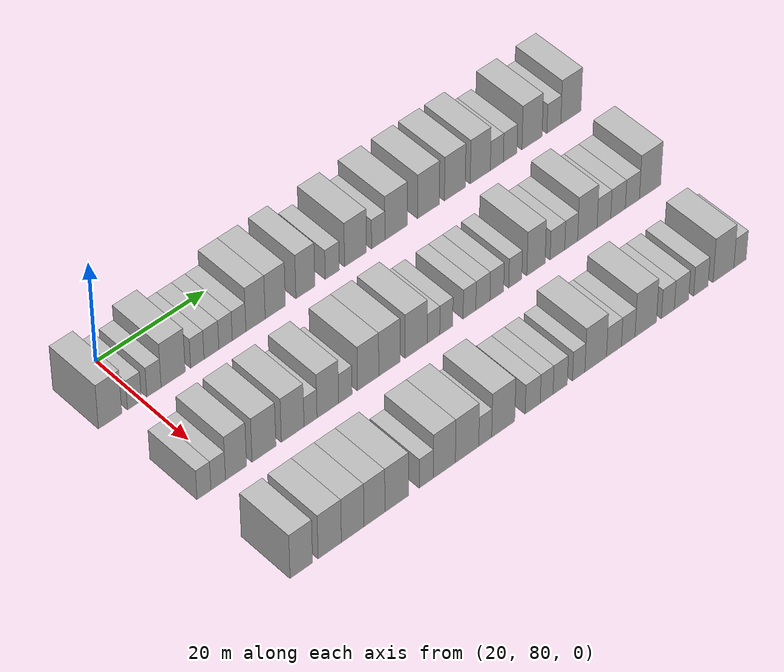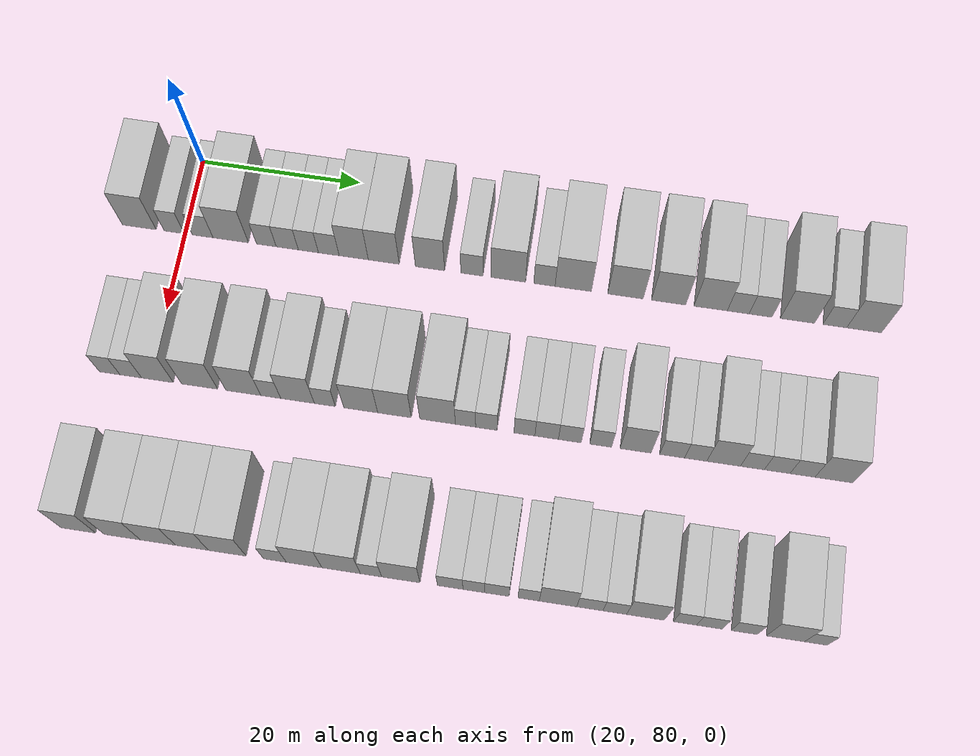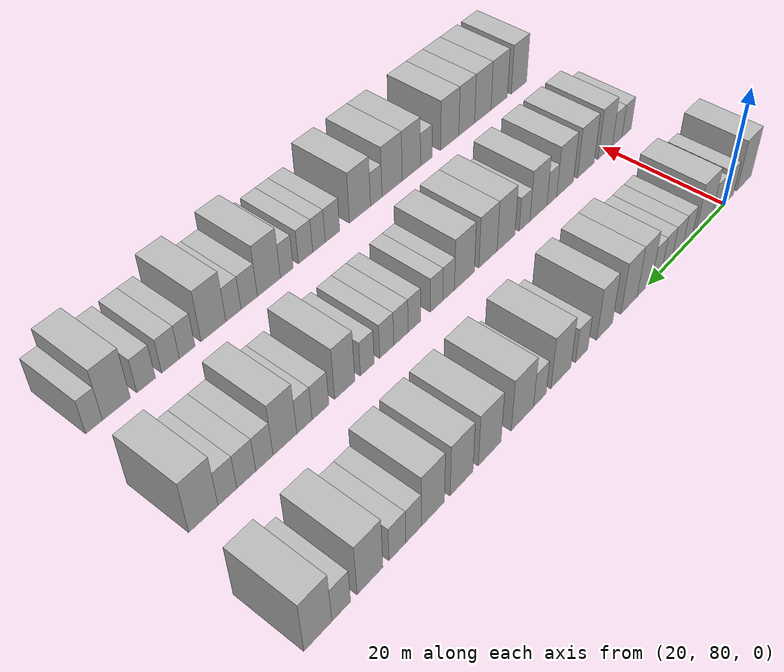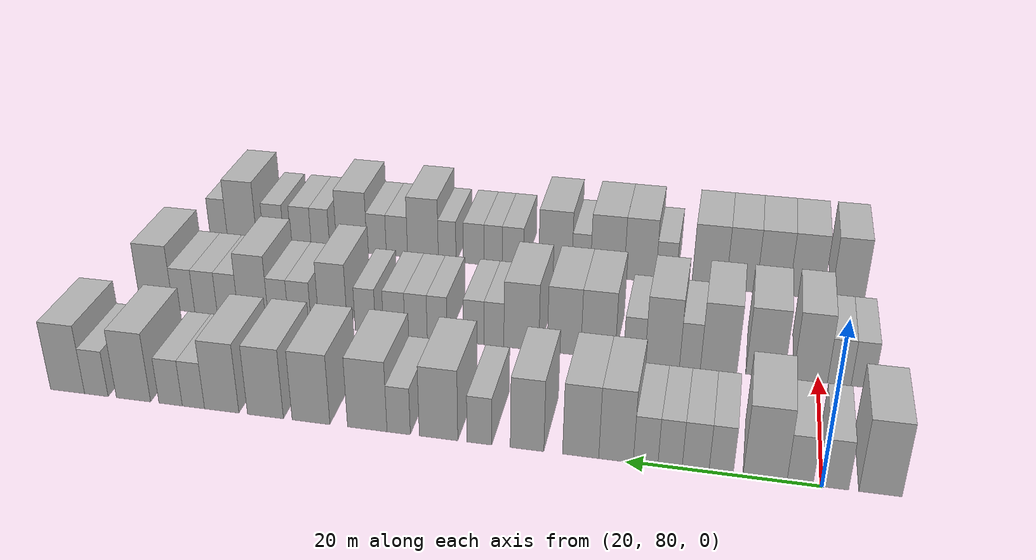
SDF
<sdf version="1.6">
 <world name="default">
  <model name="building_109">
   <static>1</static>
   <pose>25.0000 74.2249 0 0.000000 0.000000 0.000000</pose>
   <link name="link">
    <pose>0 0 4.50 0 0 0</pose>
    <collision name="collision"><geometry><box><size>10.0000 4.2385 9.0000</size></box></geometry></collision>
    <visual name="visual">
     <cast_shadows>0</cast_shadows>
     <geometry><box><size>10.0000 4.2385 9.0000</size></box></geometry>
     <material>
      <script>
       <uri>model://HANNAS_wall/materials/scripts</uri>
       <uri>model://HANNAS_wall/materials/textures</uri>
       <name>vrc/HANNAS_wall</name>
      </script>
     </material>
    </visual>
   </link>
  </model>
  <model name="building_110">
   <static>1</static>
   <pose>25.0000 78.6147 0 0.000000 0.000000 0.000000</pose>
   <link name="link">
    <pose>0 0 3.00 0 0 0</pose>
    <collision name="collision"><geometry><box><size>10.0000 2.5411 6.0000</size></box></geometry></collision>
    <visual name="visual">
     <cast_shadows>0</cast_shadows>
     <geometry><box><size>10.0000 2.5411 6.0000</size></box></geometry>
     <material>
      <script>
       <uri>model://HANNAS_wall/materials/scripts</uri>
       <uri>model://HANNAS_wall/materials/textures</uri>
       <name>vrc/HANNAS_wall</name>
      </script>
     </material>
    </visual>
   </link>
  </model>
  <model name="building_111">
   <static>1</static>
   <pose>25.0000 82.1914 0 0.000000 0.000000 0.000000</pose>
   <link name="link">
    <pose>0 0 3.00 0 0 0</pose>
    <collision name="collision"><geometry><box><size>10.0000 2.6122 6.0000</size></box></geometry></collision>
    <visual name="visual">
     <cast_shadows>0</cast_shadows>
     <geometry><box><size>10.0000 2.6122 6.0000</size></box></geometry>
     <material>
      <script>
       <uri>model://HANNAS_wall/materials/scripts</uri>
       <uri>model://HANNAS_wall/materials/textures</uri>
       <name>vrc/HANNAS_wall</name>
      </script>
     </material>
    </visual>
   </link>
  </model>
  <model name="building_112">
   <static>1</static>
   <pose>25.0000 85.7159 0 0.000000 0.000000 0.000000</pose>
   <link name="link">
    <pose>0 0 4.50 0 0 0</pose>
    <collision name="collision"><geometry><box><size>10.0000 4.4368 9.0000</size></box></geometry></collision>
    <visual name="visual">
     <cast_shadows>0</cast_shadows>
     <geometry><box><size>10.0000 4.4368 9.0000</size></box></geometry>
     <material>
      <script>
       <uri>model://HANNAS_wall/materials/scripts</uri>
       <uri>model://HANNAS_wall/materials/textures</uri>
       <name>vrc/HANNAS_wall</name>
      </script>
     </material>
    </visual>
   </link>
  </model>
  <model name="building_113">
   <static>1</static>
   <pose>25.0000 90.1699 0 0.000000 0.000000 0.000000</pose>
   <link name="link">
    <pose>0 0 3.00 0 0 0</pose>
    <collision name="collision"><geometry><box><size>10.0000 2.4712 6.0000</size></box></geometry></collision>
    <visual name="visual">
     <cast_shadows>0</cast_shadows>
     <geometry><box><size>10.0000 2.4712 6.0000</size></box></geometry>
     <material>
      <script>
       <uri>model://HANNAS_wall/materials/scripts</uri>
       <uri>model://HANNAS_wall/materials/textures</uri>
       <name>vrc/HANNAS_wall</name>
      </script>
     </material>
    </visual>
   </link>
  </model>
  <model name="building_114">
   <static>1</static>
   <pose>25.0000 92.7852 0 0.000000 0.000000 0.000000</pose>
   <link name="link">
    <pose>0 0 3.00 0 0 0</pose>
    <collision name="collision"><geometry><box><size>10.0000 2.7594 6.0000</size></box></geometry></collision>
    <visual name="visual">
     <cast_shadows>0</cast_shadows>
     <geometry><box><size>10.0000 2.7594 6.0000</size></box></geometry>
     <material>
      <script>
       <uri>model://HANNAS_wall/materials/scripts</uri>
       <uri>model://HANNAS_wall/materials/textures</uri>
       <name>vrc/HANNAS_wall</name>
      </script>
     </material>
    </visual>
   </link>
  </model>
  <model name="building_115">
   <static>1</static>
   <pose>25.0000 95.4163 0 0.000000 0.000000 0.000000</pose>
   <link name="link">
    <pose>0 0 3.00 0 0 0</pose>
    <collision name="collision"><geometry><box><size>10.0000 2.5028 6.0000</size></box></geometry></collision>
    <visual name="visual">
     <cast_shadows>0</cast_shadows>
     <geometry><box><size>10.0000 2.5028 6.0000</size></box></geometry>
     <material>
      <script>
       <uri>model://HANNAS_wall/materials/scripts</uri>
       <uri>model://HANNAS_wall/materials/textures</uri>
       <name>vrc/HANNAS_wall</name>
      </script>
     </material>
    </visual>
   </link>
  </model>
  <model name="building_116">
   <static>1</static>
   <pose>25.0000 97.9498 0 0.000000 0.000000 0.000000</pose>
   <link name="link">
    <pose>0 0 3.00 0 0 0</pose>
    <collision name="collision"><geometry><box><size>10.0000 2.5642 6.0000</size></box></geometry></collision>
    <visual name="visual">
     <cast_shadows>0</cast_shadows>
     <geometry><box><size>10.0000 2.5642 6.0000</size></box></geometry>
     <material>
      <script>
       <uri>model://HANNAS_wall/materials/scripts</uri>
       <uri>model://HANNAS_wall/materials/textures</uri>
       <name>vrc/HANNAS_wall</name>
      </script>
     </material>
    </visual>
   </link>
  </model>
  <model name="building_117">
   <static>1</static>
   <pose>25.0000 101.0441 0 0.000000 0.000000 0.000000</pose>
   <link name="link">
    <pose>0 0 4.50 0 0 0</pose>
    <collision name="collision"><geometry><box><size>10.0000 3.6244 9.0000</size></box></geometry></collision>
    <visual name="visual">
     <cast_shadows>0</cast_shadows>
     <geometry><box><size>10.0000 3.6244 9.0000</size></box></geometry>
     <material>
      <script>
       <uri>model://HANNAS_wall/materials/scripts</uri>
       <uri>model://HANNAS_wall/materials/textures</uri>
       <name>vrc/HANNAS_wall</name>
      </script>
     </material>
    </visual>
   </link>
  </model>
  <model name="building_118">
   <static>1</static>
   <pose>25.0000 104.7723 0 0.000000 0.000000 0.000000</pose>
   <link name="link">
    <pose>0 0 4.50 0 0 0</pose>
    <collision name="collision"><geometry><box><size>10.0000 3.8319 9.0000</size></box></geometry></collision>
    <visual name="visual">
     <cast_shadows>0</cast_shadows>
     <geometry><box><size>10.0000 3.8319 9.0000</size></box></geometry>
     <material>
      <script>
       <uri>model://HANNAS_wall/materials/scripts</uri>
       <uri>model://HANNAS_wall/materials/textures</uri>
       <name>vrc/HANNAS_wall</name>
      </script>
     </material>
    </visual>
   </link>
  </model>
  <model name="building_119">
   <static>1</static>
   <pose>25.0000 110.4948 0 0.000000 0.000000 0.000000</pose>
   <link name="link">
    <pose>0 0 4.50 0 0 0</pose>
    <collision name="collision"><geometry><box><size>10.0000 3.6132 9.0000</size></box></geometry></collision>
    <visual name="visual">
     <cast_shadows>0</cast_shadows>
     <geometry><box><size>10.0000 3.6132 9.0000</size></box></geometry>
     <material>
      <script>
       <uri>model://HANNAS_wall/materials/scripts</uri>
       <uri>model://HANNAS_wall/materials/textures</uri>
       <name>vrc/HANNAS_wall</name>
      </script>
     </material>
    </visual>
   </link>
  </model>
  <model name="building_120">
   <static>1</static>
   <pose>25.0000 115.6569 0 0.000000 0.000000 0.000000</pose>
   <link name="link">
    <pose>0 0 3.00 0 0 0</pose>
    <collision name="collision"><geometry><box><size>10.0000 2.7110 6.0000</size></box></geometry></collision>
    <visual name="visual">
     <cast_shadows>0</cast_shadows>
     <geometry><box><size>10.0000 2.7110 6.0000</size></box></geometry>
     <material>
      <script>
       <uri>model://HANNAS_wall/materials/scripts</uri>
       <uri>model://HANNAS_wall/materials/textures</uri>
       <name>vrc/HANNAS_wall</name>
      </script>
     </material>
    </visual>
   </link>
  </model>
  <model name="building_121">
   <static>1</static>
   <pose>25.0000 120.1337 0 0.000000 0.000000 0.000000</pose>
   <link name="link">
    <pose>0 0 4.50 0 0 0</pose>
    <collision name="collision"><geometry><box><size>10.0000 4.2426 9.0000</size></box></geometry></collision>
    <visual name="visual">
     <cast_shadows>0</cast_shadows>
     <geometry><box><size>10.0000 4.2426 9.0000</size></box></geometry>
     <material>
      <script>
       <uri>model://HANNAS_wall/materials/scripts</uri>
       <uri>model://HANNAS_wall/materials/textures</uri>
       <name>vrc/HANNAS_wall</name>
      </script>
     </material>
    </visual>
   </link>
  </model>
  <model name="building_122">
   <static>1</static>
   <pose>25.0000 124.5564 0 0.000000 0.000000 0.000000</pose>
   <link name="link">
    <pose>0 0 3.00 0 0 0</pose>
    <collision name="collision"><geometry><box><size>10.0000 2.6029 6.0000</size></box></geometry></collision>
    <visual name="visual">
     <cast_shadows>0</cast_shadows>
     <geometry><box><size>10.0000 2.6029 6.0000</size></box></geometry>
     <material>
      <script>
       <uri>model://HANNAS_wall/materials/scripts</uri>
       <uri>model://HANNAS_wall/materials/textures</uri>
       <name>vrc/HANNAS_wall</name>
      </script>
     </material>
    </visual>
   </link>
  </model>
  <model name="building_123">
   <static>1</static>
   <pose>25.0000 128.0799 0 0.000000 0.000000 0.000000</pose>
   <link name="link">
    <pose>0 0 4.50 0 0 0</pose>
    <collision name="collision"><geometry><box><size>10.0000 4.4442 9.0000</size></box></geometry></collision>
    <visual name="visual">
     <cast_shadows>0</cast_shadows>
     <geometry><box><size>10.0000 4.4442 9.0000</size></box></geometry>
     <material>
      <script>
       <uri>model://HANNAS_wall/materials/scripts</uri>
       <uri>model://HANNAS_wall/materials/textures</uri>
       <name>vrc/HANNAS_wall</name>
      </script>
     </material>
    </visual>
   </link>
  </model>
  <model name="building_124">
   <static>1</static>
   <pose>25.0000 134.4623 0 0.000000 0.000000 0.000000</pose>
   <link name="link">
    <pose>0 0 4.50 0 0 0</pose>
    <collision name="collision"><geometry><box><size>10.0000 4.3205 9.0000</size></box></geometry></collision>
    <visual name="visual">
     <cast_shadows>0</cast_shadows>
     <geometry><box><size>10.0000 4.3205 9.0000</size></box></geometry>
     <material>
      <script>
       <uri>model://HANNAS_wall/materials/scripts</uri>
       <uri>model://HANNAS_wall/materials/textures</uri>
       <name>vrc/HANNAS_wall</name>
      </script>
     </material>
    </visual>
   </link>
  </model>
  <model name="building_125">
   <static>1</static>
   <pose>25.0000 139.7051 0 0.000000 0.000000 0.000000</pose>
   <link name="link">
    <pose>0 0 4.50 0 0 0</pose>
    <collision name="collision"><geometry><box><size>10.0000 4.1652 9.0000</size></box></geometry></collision>
    <visual name="visual">
     <cast_shadows>0</cast_shadows>
     <geometry><box><size>10.0000 4.1652 9.0000</size></box></geometry>
     <material>
      <script>
       <uri>model://HANNAS_wall/materials/scripts</uri>
       <uri>model://HANNAS_wall/materials/textures</uri>
       <name>vrc/HANNAS_wall</name>
      </script>
     </material>
    </visual>
   </link>
  </model>
  <model name="building_126">
   <static>1</static>
   <pose>25.0000 144.8054 0 0.000000 0.000000 0.000000</pose>
   <link name="link">
    <pose>0 0 4.50 0 0 0</pose>
    <collision name="collision"><geometry><box><size>10.0000 4.0354 9.0000</size></box></geometry></collision>
    <visual name="visual">
     <cast_shadows>0</cast_shadows>
     <geometry><box><size>10.0000 4.0354 9.0000</size></box></geometry>
     <material>
      <script>
       <uri>model://HANNAS_wall/materials/scripts</uri>
       <uri>model://HANNAS_wall/materials/textures</uri>
       <name>vrc/HANNAS_wall</name>
      </script>
     </material>
    </visual>
   </link>
  </model>
  <model name="building_127">
   <static>1</static>
   <pose>25.0000 148.1368 0 0.000000 0.000000 0.000000</pose>
   <link name="link">
    <pose>0 0 3.00 0 0 0</pose>
    <collision name="collision"><geometry><box><size>10.0000 2.6274 6.0000</size></box></geometry></collision>
    <visual name="visual">
     <cast_shadows>0</cast_shadows>
     <geometry><box><size>10.0000 2.6274 6.0000</size></box></geometry>
     <material>
      <script>
       <uri>model://HANNAS_wall/materials/scripts</uri>
       <uri>model://HANNAS_wall/materials/textures</uri>
       <name>vrc/HANNAS_wall</name>
      </script>
     </material>
    </visual>
   </link>
  </model>
  <model name="building_128">
   <static>1</static>
   <pose>25.0000 150.8428 0 0.000000 0.000000 0.000000</pose>
   <link name="link">
    <pose>0 0 3.00 0 0 0</pose>
    <collision name="collision"><geometry><box><size>10.0000 2.7845 6.0000</size></box></geometry></collision>
    <visual name="visual">
     <cast_shadows>0</cast_shadows>
     <geometry><box><size>10.0000 2.7845 6.0000</size></box></geometry>
     <material>
      <script>
       <uri>model://HANNAS_wall/materials/scripts</uri>
       <uri>model://HANNAS_wall/materials/textures</uri>
       <name>vrc/HANNAS_wall</name>
      </script>
     </material>
    </visual>
   </link>
  </model>
  <model name="building_129">
   <static>1</static>
   <pose>25.0000 155.2944 0 0.000000 0.000000 0.000000</pose>
   <link name="link">
    <pose>0 0 4.50 0 0 0</pose>
    <collision name="collision"><geometry><box><size>10.0000 4.1188 9.0000</size></box></geometry></collision>
    <visual name="visual">
     <cast_shadows>0</cast_shadows>
     <geometry><box><size>10.0000 4.1188 9.0000</size></box></geometry>
     <material>
      <script>
       <uri>model://HANNAS_wall/materials/scripts</uri>
       <uri>model://HANNAS_wall/materials/textures</uri>
       <name>vrc/HANNAS_wall</name>
      </script>
     </material>
    </visual>
   </link>
  </model>
  <model name="building_130">
   <static>1</static>
   <pose>25.0000 159.7835 0 0.000000 0.000000 0.000000</pose>
   <link name="link">
    <pose>0 0 3.00 0 0 0</pose>
    <collision name="collision"><geometry><box><size>10.0000 2.8593 6.0000</size></box></geometry></collision>
    <visual name="visual">
     <cast_shadows>0</cast_shadows>
     <geometry><box><size>10.0000 2.8593 6.0000</size></box></geometry>
     <material>
      <script>
       <uri>model://HANNAS_wall/materials/scripts</uri>
       <uri>model://HANNAS_wall/materials/textures</uri>
       <name>vrc/HANNAS_wall</name>
      </script>
     </material>
    </visual>
   </link>
  </model>
  <model name="building_131">
   <static>1</static>
   <pose>25.0000 163.2983 0 0.000000 0.000000 0.000000</pose>
   <link name="link">
    <pose>0 0 4.50 0 0 0</pose>
    <collision name="collision"><geometry><box><size>10.0000 4.1704 9.0000</size></box></geometry></collision>
    <visual name="visual">
     <cast_shadows>0</cast_shadows>
     <geometry><box><size>10.0000 4.1704 9.0000</size></box></geometry>
     <material>
      <script>
       <uri>model://HANNAS_wall/materials/scripts</uri>
       <uri>model://HANNAS_wall/materials/textures</uri>
       <name>vrc/HANNAS_wall</name>
      </script>
     </material>
    </visual>
   </link>
  </model>
  <model name="building_272">
   <static>1</static>
   <pose>44.0000 75.1105 0 0.000000 0.000000 0.000000</pose>
   <link name="link">
    <pose>0 0 3.00 0 0 0</pose>
    <collision name="collision"><geometry><box><size>10.0000 2.5120 6.0000</size></box></geometry></collision>
    <visual name="visual">
     <cast_shadows>0</cast_shadows>
     <geometry><box><size>10.0000 2.5120 6.0000</size></box></geometry>
     <material>
      <script>
       <uri>model://HANNAS_wall/materials/scripts</uri>
       <uri>model://HANNAS_wall/materials/textures</uri>
       <name>vrc/HANNAS_wall</name>
      </script>
     </material>
    </visual>
   </link>
  </model>
  <model name="building_273">
   <static>1</static>
   <pose>44.0000 77.6825 0 0.000000 0.000000 0.000000</pose>
   <link name="link">
    <pose>0 0 3.00 0 0 0</pose>
    <collision name="collision"><geometry><box><size>10.0000 2.6320 6.0000</size></box></geometry></collision>
    <visual name="visual">
     <cast_shadows>0</cast_shadows>
     <geometry><box><size>10.0000 2.6320 6.0000</size></box></geometry>
     <material>
      <script>
       <uri>model://HANNAS_wall/materials/scripts</uri>
       <uri>model://HANNAS_wall/materials/textures</uri>
       <name>vrc/HANNAS_wall</name>
      </script>
     </material>
    </visual>
   </link>
  </model>
  <model name="building_274">
   <static>1</static>
   <pose>44.0000 80.9216 0 0.000000 0.000000 0.000000</pose>
   <link name="link">
    <pose>0 0 4.50 0 0 0</pose>
    <collision name="collision"><geometry><box><size>10.0000 3.8462 9.0000</size></box></geometry></collision>
    <visual name="visual">
     <cast_shadows>0</cast_shadows>
     <geometry><box><size>10.0000 3.8462 9.0000</size></box></geometry>
     <material>
      <script>
       <uri>model://HANNAS_wall/materials/scripts</uri>
       <uri>model://HANNAS_wall/materials/textures</uri>
       <name>vrc/HANNAS_wall</name>
      </script>
     </material>
    </visual>
   </link>
  </model>
  <model name="building_275">
   <static>1</static>
   <pose>44.0000 86.0256 0 0.000000 0.000000 0.000000</pose>
   <link name="link">
    <pose>0 0 4.50 0 0 0</pose>
    <collision name="collision"><geometry><box><size>10.0000 4.3617 9.0000</size></box></geometry></collision>
    <visual name="visual">
     <cast_shadows>0</cast_shadows>
     <geometry><box><size>10.0000 4.3617 9.0000</size></box></geometry>
     <material>
      <script>
       <uri>model://HANNAS_wall/materials/scripts</uri>
       <uri>model://HANNAS_wall/materials/textures</uri>
       <name>vrc/HANNAS_wall</name>
      </script>
     </material>
    </visual>
   </link>
  </model>
  <model name="building_276">
   <static>1</static>
   <pose>44.0000 91.3037 0 0.000000 0.000000 0.000000</pose>
   <link name="link">
    <pose>0 0 4.50 0 0 0</pose>
    <collision name="collision"><geometry><box><size>10.0000 4.1945 9.0000</size></box></geometry></collision>
    <visual name="visual">
     <cast_shadows>0</cast_shadows>
     <geometry><box><size>10.0000 4.1945 9.0000</size></box></geometry>
     <material>
      <script>
       <uri>model://HANNAS_wall/materials/scripts</uri>
       <uri>model://HANNAS_wall/materials/textures</uri>
       <name>vrc/HANNAS_wall</name>
      </script>
     </material>
    </visual>
   </link>
  </model>
  <model name="building_277">
   <static>1</static>
   <pose>44.0000 94.6082 0 0.000000 0.000000 0.000000</pose>
   <link name="link">
    <pose>0 0 3.00 0 0 0</pose>
    <collision name="collision"><geometry><box><size>10.0000 2.4146 6.0000</size></box></geometry></collision>
    <visual name="visual">
     <cast_shadows>0</cast_shadows>
     <geometry><box><size>10.0000 2.4146 6.0000</size></box></geometry>
     <material>
      <script>
       <uri>model://HANNAS_wall/materials/scripts</uri>
       <uri>model://HANNAS_wall/materials/textures</uri>
       <name>vrc/HANNAS_wall</name>
      </script>
     </material>
    </visual>
   </link>
  </model>
  <model name="building_278">
   <static>1</static>
   <pose>44.0000 97.8361 0 0.000000 0.000000 0.000000</pose>
   <link name="link">
    <pose>0 0 4.50 0 0 0</pose>
    <collision name="collision"><geometry><box><size>10.0000 4.0410 9.0000</size></box></geometry></collision>
    <visual name="visual">
     <cast_shadows>0</cast_shadows>
     <geometry><box><size>10.0000 4.0410 9.0000</size></box></geometry>
     <material>
      <script>
       <uri>model://HANNAS_wall/materials/scripts</uri>
       <uri>model://HANNAS_wall/materials/textures</uri>
       <name>vrc/HANNAS_wall</name>
      </script>
     </material>
    </visual>
   </link>
  </model>
  <model name="building_279">
   <static>1</static>
   <pose>44.0000 101.1169 0 0.000000 0.000000 0.000000</pose>
   <link name="link">
    <pose>0 0 3.00 0 0 0</pose>
    <collision name="collision"><geometry><box><size>10.0000 2.5207 6.0000</size></box></geometry></collision>
    <visual name="visual">
     <cast_shadows>0</cast_shadows>
     <geometry><box><size>10.0000 2.5207 6.0000</size></box></geometry>
     <material>
      <script>
       <uri>model://HANNAS_wall/materials/scripts</uri>
       <uri>model://HANNAS_wall/materials/textures</uri>
       <name>vrc/HANNAS_wall</name>
      </script>
     </material>
    </visual>
   </link>
  </model>
  <model name="building_280">
   <static>1</static>
   <pose>44.0000 105.4025 0 0.000000 0.000000 0.000000</pose>
   <link name="link">
    <pose>0 0 4.50 0 0 0</pose>
    <collision name="collision"><geometry><box><size>10.0000 4.0504 9.0000</size></box></geometry></collision>
    <visual name="visual">
     <cast_shadows>0</cast_shadows>
     <geometry><box><size>10.0000 4.0504 9.0000</size></box></geometry>
     <material>
      <script>
       <uri>model://HANNAS_wall/materials/scripts</uri>
       <uri>model://HANNAS_wall/materials/textures</uri>
       <name>vrc/HANNAS_wall</name>
      </script>
     </material>
    </visual>
   </link>
  </model>
  <model name="building_281">
   <static>1</static>
   <pose>44.0000 109.4372 0 0.000000 0.000000 0.000000</pose>
   <link name="link">
    <pose>0 0 4.50 0 0 0</pose>
    <collision name="collision"><geometry><box><size>10.0000 4.0192 9.0000</size></box></geometry></collision>
    <visual name="visual">
     <cast_shadows>0</cast_shadows>
     <geometry><box><size>10.0000 4.0192 9.0000</size></box></geometry>
     <material>
      <script>
       <uri>model://HANNAS_wall/materials/scripts</uri>
       <uri>model://HANNAS_wall/materials/textures</uri>
       <name>vrc/HANNAS_wall</name>
      </script>
     </material>
    </visual>
   </link>
  </model>
  <model name="building_282">
   <static>1</static>
   <pose>44.0000 114.5643 0 0.000000 0.000000 0.000000</pose>
   <link name="link">
    <pose>0 0 4.50 0 0 0</pose>
    <collision name="collision"><geometry><box><size>10.0000 4.2350 9.0000</size></box></geometry></collision>
    <visual name="visual">
     <cast_shadows>0</cast_shadows>
     <geometry><box><size>10.0000 4.2350 9.0000</size></box></geometry>
     <material>
      <script>
       <uri>model://HANNAS_wall/materials/scripts</uri>
       <uri>model://HANNAS_wall/materials/textures</uri>
       <name>vrc/HANNAS_wall</name>
      </script>
     </material>
    </visual>
   </link>
  </model>
  <model name="building_283">
   <static>1</static>
   <pose>44.0000 117.8838 0 0.000000 0.000000 0.000000</pose>
   <link name="link">
    <pose>0 0 3.00 0 0 0</pose>
    <collision name="collision"><geometry><box><size>10.0000 2.4039 6.0000</size></box></geometry></collision>
    <visual name="visual">
     <cast_shadows>0</cast_shadows>
     <geometry><box><size>10.0000 2.4039 6.0000</size></box></geometry>
     <material>
      <script>
       <uri>model://HANNAS_wall/materials/scripts</uri>
       <uri>model://HANNAS_wall/materials/textures</uri>
       <name>vrc/HANNAS_wall</name>
      </script>
     </material>
    </visual>
   </link>
  </model>
  <model name="building_284">
   <static>1</static>
   <pose>44.0000 120.3531 0 0.000000 0.000000 0.000000</pose>
   <link name="link">
    <pose>0 0 3.00 0 0 0</pose>
    <collision name="collision"><geometry><box><size>10.0000 2.5348 6.0000</size></box></geometry></collision>
    <visual name="visual">
     <cast_shadows>0</cast_shadows>
     <geometry><box><size>10.0000 2.5348 6.0000</size></box></geometry>
     <material>
      <script>
       <uri>model://HANNAS_wall/materials/scripts</uri>
       <uri>model://HANNAS_wall/materials/textures</uri>
       <name>vrc/HANNAS_wall</name>
      </script>
     </material>
    </visual>
   </link>
  </model>
  <model name="building_285">
   <static>1</static>
   <pose>44.0000 124.8580 0 0.000000 0.000000 0.000000</pose>
   <link name="link">
    <pose>0 0 3.00 0 0 0</pose>
    <collision name="collision"><geometry><box><size>10.0000 2.4750 6.0000</size></box></geometry></collision>
    <visual name="visual">
     <cast_shadows>0</cast_shadows>
     <geometry><box><size>10.0000 2.4750 6.0000</size></box></geometry>
     <material>
      <script>
       <uri>model://HANNAS_wall/materials/scripts</uri>
       <uri>model://HANNAS_wall/materials/textures</uri>
       <name>vrc/HANNAS_wall</name>
      </script>
     </material>
    </visual>
   </link>
  </model>
  <model name="building_286">
   <static>1</static>
   <pose>44.0000 127.4787 0 0.000000 0.000000 0.000000</pose>
   <link name="link">
    <pose>0 0 3.00 0 0 0</pose>
    <collision name="collision"><geometry><box><size>10.0000 2.7664 6.0000</size></box></geometry></collision>
    <visual name="visual">
     <cast_shadows>0</cast_shadows>
     <geometry><box><size>10.0000 2.7664 6.0000</size></box></geometry>
     <material>
      <script>
       <uri>model://HANNAS_wall/materials/scripts</uri>
       <uri>model://HANNAS_wall/materials/textures</uri>
       <name>vrc/HANNAS_wall</name>
      </script>
     </material>
    </visual>
   </link>
  </model>
  <model name="building_287">
   <static>1</static>
   <pose>44.0000 130.2057 0 0.000000 0.000000 0.000000</pose>
   <link name="link">
    <pose>0 0 3.00 0 0 0</pose>
    <collision name="collision"><geometry><box><size>10.0000 2.6877 6.0000</size></box></geometry></collision>
    <visual name="visual">
     <cast_shadows>0</cast_shadows>
     <geometry><box><size>10.0000 2.6877 6.0000</size></box></geometry>
     <material>
      <script>
       <uri>model://HANNAS_wall/materials/scripts</uri>
       <uri>model://HANNAS_wall/materials/textures</uri>
       <name>vrc/HANNAS_wall</name>
      </script>
     </material>
    </visual>
   </link>
  </model>
  <model name="building_288">
   <static>1</static>
   <pose>44.0000 133.8373 0 0.000000 0.000000 0.000000</pose>
   <link name="link">
    <pose>0 0 3.00 0 0 0</pose>
    <collision name="collision"><geometry><box><size>10.0000 2.5754 6.0000</size></box></geometry></collision>
    <visual name="visual">
     <cast_shadows>0</cast_shadows>
     <geometry><box><size>10.0000 2.5754 6.0000</size></box></geometry>
     <material>
      <script>
       <uri>model://HANNAS_wall/materials/scripts</uri>
       <uri>model://HANNAS_wall/materials/textures</uri>
       <name>vrc/HANNAS_wall</name>
      </script>
     </material>
    </visual>
   </link>
  </model>
  <model name="building_289">
   <static>1</static>
   <pose>44.0000 137.9425 0 0.000000 0.000000 0.000000</pose>
   <link name="link">
    <pose>0 0 4.50 0 0 0</pose>
    <collision name="collision"><geometry><box><size>10.0000 3.6349 9.0000</size></box></geometry></collision>
    <visual name="visual">
     <cast_shadows>0</cast_shadows>
     <geometry><box><size>10.0000 3.6349 9.0000</size></box></geometry>
     <material>
      <script>
       <uri>model://HANNAS_wall/materials/scripts</uri>
       <uri>model://HANNAS_wall/materials/textures</uri>
       <name>vrc/HANNAS_wall</name>
      </script>
     </material>
    </visual>
   </link>
  </model>
  <model name="building_290">
   <static>1</static>
   <pose>44.0000 142.2200 0 0.000000 0.000000 0.000000</pose>
   <link name="link">
    <pose>0 0 3.00 0 0 0</pose>
    <collision name="collision"><geometry><box><size>10.0000 2.9201 6.0000</size></box></geometry></collision>
    <visual name="visual">
     <cast_shadows>0</cast_shadows>
     <geometry><box><size>10.0000 2.9201 6.0000</size></box></geometry>
     <material>
      <script>
       <uri>model://HANNAS_wall/materials/scripts</uri>
       <uri>model://HANNAS_wall/materials/textures</uri>
       <name>vrc/HANNAS_wall</name>
      </script>
     </material>
    </visual>
   </link>
  </model>
  <model name="building_291">
   <static>1</static>
   <pose>44.0000 144.9776 0 0.000000 0.000000 0.000000</pose>
   <link name="link">
    <pose>0 0 3.00 0 0 0</pose>
    <collision name="collision"><geometry><box><size>10.0000 2.5951 6.0000</size></box></geometry></collision>
    <visual name="visual">
     <cast_shadows>0</cast_shadows>
     <geometry><box><size>10.0000 2.5951 6.0000</size></box></geometry>
     <material>
      <script>
       <uri>model://HANNAS_wall/materials/scripts</uri>
       <uri>model://HANNAS_wall/materials/textures</uri>
       <name>vrc/HANNAS_wall</name>
      </script>
     </material>
    </visual>
   </link>
  </model>
  <model name="building_292">
   <static>1</static>
   <pose>44.0000 148.2405 0 0.000000 0.000000 0.000000</pose>
   <link name="link">
    <pose>0 0 4.50 0 0 0</pose>
    <collision name="collision"><geometry><box><size>10.0000 3.9307 9.0000</size></box></geometry></collision>
    <visual name="visual">
     <cast_shadows>0</cast_shadows>
     <geometry><box><size>10.0000 3.9307 9.0000</size></box></geometry>
     <material>
      <script>
       <uri>model://HANNAS_wall/materials/scripts</uri>
       <uri>model://HANNAS_wall/materials/textures</uri>
       <name>vrc/HANNAS_wall</name>
      </script>
     </material>
    </visual>
   </link>
  </model>
  <model name="building_293">
   <static>1</static>
   <pose>44.0000 151.5918 0 0.000000 0.000000 0.000000</pose>
   <link name="link">
    <pose>0 0 3.00 0 0 0</pose>
    <collision name="collision"><geometry><box><size>10.0000 2.7720 6.0000</size></box></geometry></collision>
    <visual name="visual">
     <cast_shadows>0</cast_shadows>
     <geometry><box><size>10.0000 2.7720 6.0000</size></box></geometry>
     <material>
      <script>
       <uri>model://HANNAS_wall/materials/scripts</uri>
       <uri>model://HANNAS_wall/materials/textures</uri>
       <name>vrc/HANNAS_wall</name>
      </script>
     </material>
    </visual>
   </link>
  </model>
  <model name="building_294">
   <static>1</static>
   <pose>44.0000 154.4700 0 0.000000 0.000000 0.000000</pose>
   <link name="link">
    <pose>0 0 3.00 0 0 0</pose>
    <collision name="collision"><geometry><box><size>10.0000 2.9843 6.0000</size></box></geometry></collision>
    <visual name="visual">
     <cast_shadows>0</cast_shadows>
     <geometry><box><size>10.0000 2.9843 6.0000</size></box></geometry>
     <material>
      <script>
       <uri>model://HANNAS_wall/materials/scripts</uri>
       <uri>model://HANNAS_wall/materials/textures</uri>
       <name>vrc/HANNAS_wall</name>
      </script>
     </material>
    </visual>
   </link>
  </model>
  <model name="building_295">
   <static>1</static>
   <pose>44.0000 157.4022 0 0.000000 0.000000 0.000000</pose>
   <link name="link">
    <pose>0 0 3.00 0 0 0</pose>
    <collision name="collision"><geometry><box><size>10.0000 2.8801 6.0000</size></box></geometry></collision>
    <visual name="visual">
     <cast_shadows>0</cast_shadows>
     <geometry><box><size>10.0000 2.8801 6.0000</size></box></geometry>
     <material>
      <script>
       <uri>model://HANNAS_wall/materials/scripts</uri>
       <uri>model://HANNAS_wall/materials/textures</uri>
       <name>vrc/HANNAS_wall</name>
      </script>
     </material>
    </visual>
   </link>
  </model>
  <model name="building_296">
   <static>1</static>
   <pose>44.0000 161.0312 0 0.000000 0.000000 0.000000</pose>
   <link name="link">
    <pose>0 0 4.50 0 0 0</pose>
    <collision name="collision"><geometry><box><size>10.0000 4.3779 9.0000</size></box></geometry></collision>
    <visual name="visual">
     <cast_shadows>0</cast_shadows>
     <geometry><box><size>10.0000 4.3779 9.0000</size></box></geometry>
     <material>
      <script>
       <uri>model://HANNAS_wall/materials/scripts</uri>
       <uri>model://HANNAS_wall/materials/textures</uri>
       <name>vrc/HANNAS_wall</name>
      </script>
     </material>
    </visual>
   </link>
  </model>
  <model name="building_456">
   <static>1</static>
   <pose>63.0000 76.0782 0 0.000000 0.000000 0.000000</pose>
   <link name="link">
    <pose>0 0 4.50 0 0 0</pose>
    <collision name="collision"><geometry><box><size>10.0000 4.0515 9.0000</size></box></geometry></collision>
    <visual name="visual">
     <cast_shadows>0</cast_shadows>
     <geometry><box><size>10.0000 4.0515 9.0000</size></box></geometry>
     <material>
      <script>
       <uri>model://HANNAS_wall/materials/scripts</uri>
       <uri>model://HANNAS_wall/materials/textures</uri>
       <name>vrc/HANNAS_wall</name>
      </script>
     </material>
    </visual>
   </link>
  </model>
  <model name="building_457">
   <static>1</static>
   <pose>63.0000 81.2146 0 0.000000 0.000000 0.000000</pose>
   <link name="link">
    <pose>0 0 4.50 0 0 0</pose>
    <collision name="collision"><geometry><box><size>10.0000 4.2213 9.0000</size></box></geometry></collision>
    <visual name="visual">
     <cast_shadows>0</cast_shadows>
     <geometry><box><size>10.0000 4.2213 9.0000</size></box></geometry>
     <material>
      <script>
       <uri>model://HANNAS_wall/materials/scripts</uri>
       <uri>model://HANNAS_wall/materials/textures</uri>
       <name>vrc/HANNAS_wall</name>
      </script>
     </material>
    </visual>
   </link>
  </model>
  <model name="building_458">
   <static>1</static>
   <pose>63.0000 85.3864 0 0.000000 0.000000 0.000000</pose>
   <link name="link">
    <pose>0 0 4.50 0 0 0</pose>
    <collision name="collision"><geometry><box><size>10.0000 4.1222 9.0000</size></box></geometry></collision>
    <visual name="visual">
     <cast_shadows>0</cast_shadows>
     <geometry><box><size>10.0000 4.1222 9.0000</size></box></geometry>
     <material>
      <script>
       <uri>model://HANNAS_wall/materials/scripts</uri>
       <uri>model://HANNAS_wall/materials/textures</uri>
       <name>vrc/HANNAS_wall</name>
      </script>
     </material>
    </visual>
   </link>
  </model>
  <model name="building_459">
   <static>1</static>
   <pose>63.0000 89.3688 0 0.000000 0.000000 0.000000</pose>
   <link name="link">
    <pose>0 0 4.50 0 0 0</pose>
    <collision name="collision"><geometry><box><size>10.0000 3.8428 9.0000</size></box></geometry></collision>
    <visual name="visual">
     <cast_shadows>0</cast_shadows>
     <geometry><box><size>10.0000 3.8428 9.0000</size></box></geometry>
     <material>
      <script>
       <uri>model://HANNAS_wall/materials/scripts</uri>
       <uri>model://HANNAS_wall/materials/textures</uri>
       <name>vrc/HANNAS_wall</name>
      </script>
     </material>
    </visual>
   </link>
  </model>
  <model name="building_460">
   <static>1</static>
   <pose>63.0000 93.4748 0 0.000000 0.000000 0.000000</pose>
   <link name="link">
    <pose>0 0 4.50 0 0 0</pose>
    <collision name="collision"><geometry><box><size>10.0000 4.3691 9.0000</size></box></geometry></collision>
    <visual name="visual">
     <cast_shadows>0</cast_shadows>
     <geometry><box><size>10.0000 4.3691 9.0000</size></box></geometry>
     <material>
      <script>
       <uri>model://HANNAS_wall/materials/scripts</uri>
       <uri>model://HANNAS_wall/materials/textures</uri>
       <name>vrc/HANNAS_wall</name>
      </script>
     </material>
    </visual>
   </link>
  </model>
  <model name="building_461">
   <static>1</static>
   <pose>63.0000 98.9811 0 0.000000 0.000000 0.000000</pose>
   <link name="link">
    <pose>0 0 3.00 0 0 0</pose>
    <collision name="collision"><geometry><box><size>10.0000 2.6434 6.0000</size></box></geometry></collision>
    <visual name="visual">
     <cast_shadows>0</cast_shadows>
     <geometry><box><size>10.0000 2.6434 6.0000</size></box></geometry>
     <material>
      <script>
       <uri>model://HANNAS_wall/materials/scripts</uri>
       <uri>model://HANNAS_wall/materials/textures</uri>
       <name>vrc/HANNAS_wall</name>
      </script>
     </material>
    </visual>
   </link>
  </model>
  <model name="building_462">
   <static>1</static>
   <pose>63.0000 102.3611 0 0.000000 0.000000 0.000000</pose>
   <link name="link">
    <pose>0 0 4.50 0 0 0</pose>
    <collision name="collision"><geometry><box><size>10.0000 4.1167 9.0000</size></box></geometry></collision>
    <visual name="visual">
     <cast_shadows>0</cast_shadows>
     <geometry><box><size>10.0000 4.1167 9.0000</size></box></geometry>
     <material>
      <script>
       <uri>model://HANNAS_wall/materials/scripts</uri>
       <uri>model://HANNAS_wall/materials/textures</uri>
       <name>vrc/HANNAS_wall</name>
      </script>
     </material>
    </visual>
   </link>
  </model>
  <model name="building_463">
   <static>1</static>
   <pose>63.0000 106.6307 0 0.000000 0.000000 0.000000</pose>
   <link name="link">
    <pose>0 0 4.50 0 0 0</pose>
    <collision name="collision"><geometry><box><size>10.0000 4.4224 9.0000</size></box></geometry></collision>
    <visual name="visual">
     <cast_shadows>0</cast_shadows>
     <geometry><box><size>10.0000 4.4224 9.0000</size></box></geometry>
     <material>
      <script>
       <uri>model://HANNAS_wall/materials/scripts</uri>
       <uri>model://HANNAS_wall/materials/textures</uri>
       <name>vrc/HANNAS_wall</name>
      </script>
     </material>
    </visual>
   </link>
  </model>
  <model name="building_464">
   <static>1</static>
   <pose>63.0000 110.0691 0 0.000000 0.000000 0.000000</pose>
   <link name="link">
    <pose>0 0 3.00 0 0 0</pose>
    <collision name="collision"><geometry><box><size>10.0000 2.4546 6.0000</size></box></geometry></collision>
    <visual name="visual">
     <cast_shadows>0</cast_shadows>
     <geometry><box><size>10.0000 2.4546 6.0000</size></box></geometry>
     <material>
      <script>
       <uri>model://HANNAS_wall/materials/scripts</uri>
       <uri>model://HANNAS_wall/materials/textures</uri>
       <name>vrc/HANNAS_wall</name>
      </script>
     </material>
    </visual>
   </link>
  </model>
  <model name="building_465">
   <static>1</static>
   <pose>63.0000 113.4959 0 0.000000 0.000000 0.000000</pose>
   <link name="link">
    <pose>0 0 4.50 0 0 0</pose>
    <collision name="collision"><geometry><box><size>10.0000 4.3988 9.0000</size></box></geometry></collision>
    <visual name="visual">
     <cast_shadows>0</cast_shadows>
     <geometry><box><size>10.0000 4.3988 9.0000</size></box></geometry>
     <material>
      <script>
       <uri>model://HANNAS_wall/materials/scripts</uri>
       <uri>model://HANNAS_wall/materials/textures</uri>
       <name>vrc/HANNAS_wall</name>
      </script>
     </material>
    </visual>
   </link>
  </model>
  <model name="building_466">
   <static>1</static>
   <pose>63.0000 119.1493 0 0.000000 0.000000 0.000000</pose>
   <link name="link">
    <pose>0 0 3.00 0 0 0</pose>
    <collision name="collision"><geometry><box><size>10.0000 2.9080 6.0000</size></box></geometry></collision>
    <visual name="visual">
     <cast_shadows>0</cast_shadows>
     <geometry><box><size>10.0000 2.9080 6.0000</size></box></geometry>
     <material>
      <script>
       <uri>model://HANNAS_wall/materials/scripts</uri>
       <uri>model://HANNAS_wall/materials/textures</uri>
       <name>vrc/HANNAS_wall</name>
      </script>
     </material>
    </visual>
   </link>
  </model>
  <model name="building_467">
   <static>1</static>
   <pose>63.0000 121.8431 0 0.000000 0.000000 0.000000</pose>
   <link name="link">
    <pose>0 0 3.00 0 0 0</pose>
    <collision name="collision"><geometry><box><size>10.0000 2.4796 6.0000</size></box></geometry></collision>
    <visual name="visual">
     <cast_shadows>0</cast_shadows>
     <geometry><box><size>10.0000 2.4796 6.0000</size></box></geometry>
     <material>
      <script>
       <uri>model://HANNAS_wall/materials/scripts</uri>
       <uri>model://HANNAS_wall/materials/textures</uri>
       <name>vrc/HANNAS_wall</name>
      </script>
     </material>
    </visual>
   </link>
  </model>
  <model name="building_468">
   <static>1</static>
   <pose>63.0000 124.4717 0 0.000000 0.000000 0.000000</pose>
   <link name="link">
    <pose>0 0 3.00 0 0 0</pose>
    <collision name="collision"><geometry><box><size>10.0000 2.7775 6.0000</size></box></geometry></collision>
    <visual name="visual">
     <cast_shadows>0</cast_shadows>
     <geometry><box><size>10.0000 2.7775 6.0000</size></box></geometry>
     <material>
      <script>
       <uri>model://HANNAS_wall/materials/scripts</uri>
       <uri>model://HANNAS_wall/materials/textures</uri>
       <name>vrc/HANNAS_wall</name>
      </script>
     </material>
    </visual>
   </link>
  </model>
  <model name="building_469">
   <static>1</static>
   <pose>63.0000 128.0728 0 0.000000 0.000000 0.000000</pose>
   <link name="link">
    <pose>0 0 3.00 0 0 0</pose>
    <collision name="collision"><geometry><box><size>10.0000 2.4248 6.0000</size></box></geometry></collision>
    <visual name="visual">
     <cast_shadows>0</cast_shadows>
     <geometry><box><size>10.0000 2.4248 6.0000</size></box></geometry>
     <material>
      <script>
       <uri>model://HANNAS_wall/materials/scripts</uri>
       <uri>model://HANNAS_wall/materials/textures</uri>
       <name>vrc/HANNAS_wall</name>
      </script>
     </material>
    </visual>
   </link>
  </model>
  <model name="building_470">
   <static>1</static>
   <pose>63.0000 131.4067 0 0.000000 0.000000 0.000000</pose>
   <link name="link">
    <pose>0 0 4.50 0 0 0</pose>
    <collision name="collision"><geometry><box><size>10.0000 4.2431 9.0000</size></box></geometry></collision>
    <visual name="visual">
     <cast_shadows>0</cast_shadows>
     <geometry><box><size>10.0000 4.2431 9.0000</size></box></geometry>
     <material>
      <script>
       <uri>model://HANNAS_wall/materials/scripts</uri>
       <uri>model://HANNAS_wall/materials/textures</uri>
       <name>vrc/HANNAS_wall</name>
      </script>
     </material>
    </visual>
   </link>
  </model>
  <model name="building_471">
   <static>1</static>
   <pose>63.0000 135.0044 0 0.000000 0.000000 0.000000</pose>
   <link name="link">
    <pose>0 0 3.00 0 0 0</pose>
    <collision name="collision"><geometry><box><size>10.0000 2.9522 6.0000</size></box></geometry></collision>
    <visual name="visual">
     <cast_shadows>0</cast_shadows>
     <geometry><box><size>10.0000 2.9522 6.0000</size></box></geometry>
     <material>
      <script>
       <uri>model://HANNAS_wall/materials/scripts</uri>
       <uri>model://HANNAS_wall/materials/textures</uri>
       <name>vrc/HANNAS_wall</name>
      </script>
     </material>
    </visual>
   </link>
  </model>
  <model name="building_472">
   <static>1</static>
   <pose>63.0000 137.8224 0 0.000000 0.000000 0.000000</pose>
   <link name="link">
    <pose>0 0 3.00 0 0 0</pose>
    <collision name="collision"><geometry><box><size>10.0000 2.6839 6.0000</size></box></geometry></collision>
    <visual name="visual">
     <cast_shadows>0</cast_shadows>
     <geometry><box><size>10.0000 2.6839 6.0000</size></box></geometry>
     <material>
      <script>
       <uri>model://HANNAS_wall/materials/scripts</uri>
       <uri>model://HANNAS_wall/materials/textures</uri>
       <name>vrc/HANNAS_wall</name>
      </script>
     </material>
    </visual>
   </link>
  </model>
  <model name="building_473">
   <static>1</static>
   <pose>63.0000 141.3064 0 0.000000 0.000000 0.000000</pose>
   <link name="link">
    <pose>0 0 4.50 0 0 0</pose>
    <collision name="collision"><geometry><box><size>10.0000 4.2839 9.0000</size></box></geometry></collision>
    <visual name="visual">
     <cast_shadows>0</cast_shadows>
     <geometry><box><size>10.0000 4.2839 9.0000</size></box></geometry>
     <material>
      <script>
       <uri>model://HANNAS_wall/materials/scripts</uri>
       <uri>model://HANNAS_wall/materials/textures</uri>
       <name>vrc/HANNAS_wall</name>
      </script>
     </material>
    </visual>
   </link>
  </model>
  <model name="building_474">
   <static>1</static>
   <pose>63.0000 145.7516 0 0.000000 0.000000 0.000000</pose>
   <link name="link">
    <pose>0 0 3.00 0 0 0</pose>
    <collision name="collision"><geometry><box><size>10.0000 2.6065 6.0000</size></box></geometry></collision>
    <visual name="visual">
     <cast_shadows>0</cast_shadows>
     <geometry><box><size>10.0000 2.6065 6.0000</size></box></geometry>
     <material>
      <script>
       <uri>model://HANNAS_wall/materials/scripts</uri>
       <uri>model://HANNAS_wall/materials/textures</uri>
       <name>vrc/HANNAS_wall</name>
      </script>
     </material>
    </visual>
   </link>
  </model>
  <model name="building_475">
   <static>1</static>
   <pose>63.0000 148.5014 0 0.000000 0.000000 0.000000</pose>
   <link name="link">
    <pose>0 0 3.00 0 0 0</pose>
    <collision name="collision"><geometry><box><size>10.0000 2.8931 6.0000</size></box></geometry></collision>
    <visual name="visual">
     <cast_shadows>0</cast_shadows>
     <geometry><box><size>10.0000 2.8931 6.0000</size></box></geometry>
     <material>
      <script>
       <uri>model://HANNAS_wall/materials/scripts</uri>
       <uri>model://HANNAS_wall/materials/textures</uri>
       <name>vrc/HANNAS_wall</name>
      </script>
     </material>
    </visual>
   </link>
  </model>
  <model name="building_476">
   <static>1</static>
   <pose>63.0000 152.4172 0 0.000000 0.000000 0.000000</pose>
   <link name="link">
    <pose>0 0 3.00 0 0 0</pose>
    <collision name="collision"><geometry><box><size>10.0000 2.9386 6.0000</size></box></geometry></collision>
    <visual name="visual">
     <cast_shadows>0</cast_shadows>
     <geometry><box><size>10.0000 2.9386 6.0000</size></box></geometry>
     <material>
      <script>
       <uri>model://HANNAS_wall/materials/scripts</uri>
       <uri>model://HANNAS_wall/materials/textures</uri>
       <name>vrc/HANNAS_wall</name>
      </script>
     </material>
    </visual>
   </link>
  </model>
  <model name="building_477">
   <static>1</static>
   <pose>63.0000 157.0193 0 0.000000 0.000000 0.000000</pose>
   <link name="link">
    <pose>0 0 4.50 0 0 0</pose>
    <collision name="collision"><geometry><box><size>10.0000 4.2656 9.0000</size></box></geometry></collision>
    <visual name="visual">
     <cast_shadows>0</cast_shadows>
     <geometry><box><size>10.0000 4.2656 9.0000</size></box></geometry>
     <material>
      <script>
       <uri>model://HANNAS_wall/materials/scripts</uri>
       <uri>model://HANNAS_wall/materials/textures</uri>
       <name>vrc/HANNAS_wall</name>
      </script>
     </material>
    </visual>
   </link>
  </model>
  <model name="building_478">
   <static>1</static>
   <pose>63.0000 160.4129 0 0.000000 0.000000 0.000000</pose>
   <link name="link">
    <pose>0 0 3.00 0 0 0</pose>
    <collision name="collision"><geometry><box><size>10.0000 2.5215 6.0000</size></box></geometry></collision>
    <visual name="visual">
     <cast_shadows>0</cast_shadows>
     <geometry><box><size>10.0000 2.5215 6.0000</size></box></geometry>
     <material>
      <script>
       <uri>model://HANNAS_wall/materials/scripts</uri>
       <uri>model://HANNAS_wall/materials/textures</uri>
       <name>vrc/HANNAS_wall</name>
      </script>
     </material>
    </visual>
   </link>
  </model>
 </world>
</sdf>
